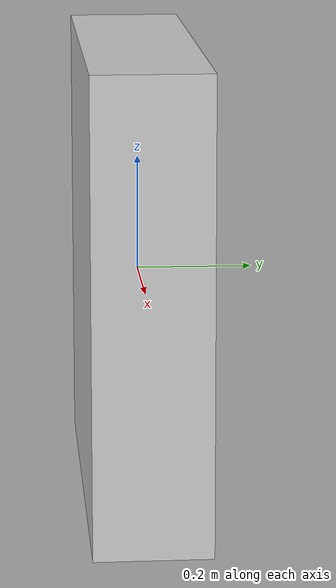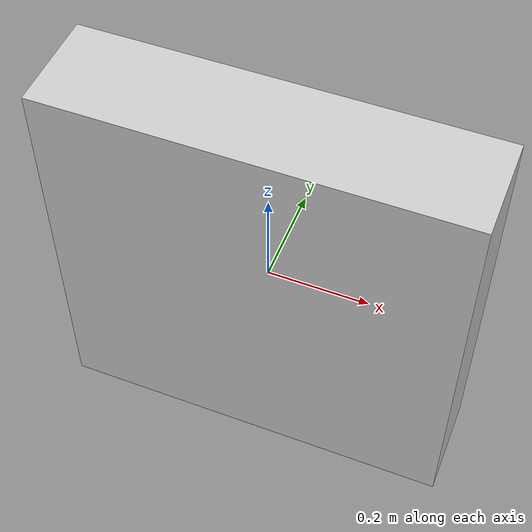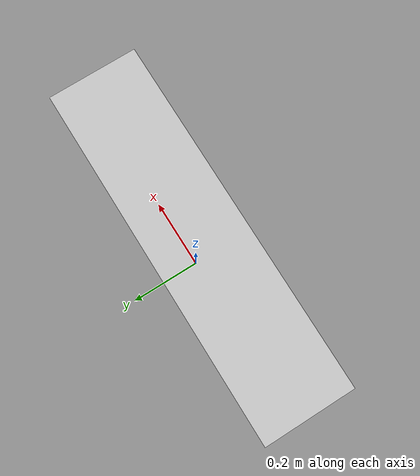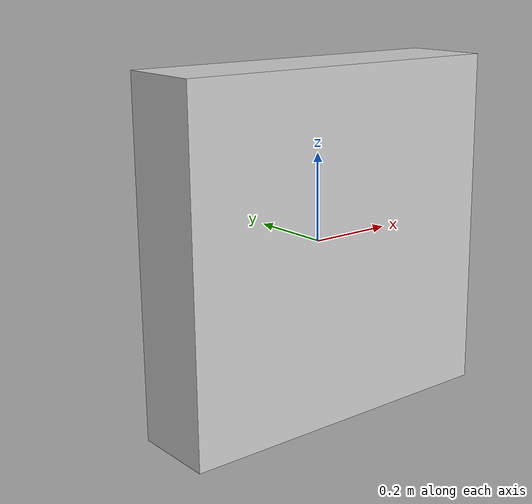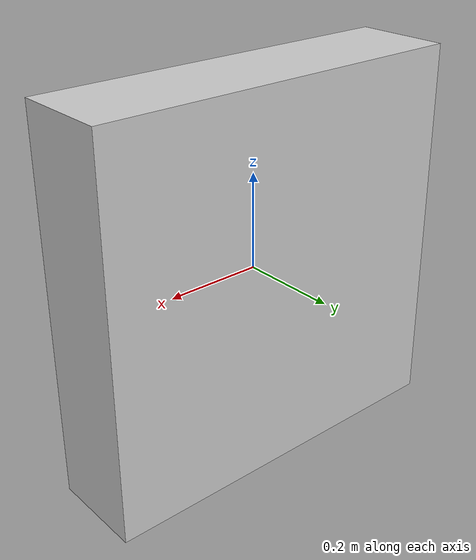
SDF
<?xml version="1.0" ?>
<sdf version="1.5">
  <model name="parede">
    <link name="link">
      <collision name="collision">
        <geometry>
          <mesh>
            <scale>0.2 0.2 0.2</scale>
            <uri>model://parede/meshes/parede.stl</uri>
          </mesh>
        </geometry>
      </collision>
      <visual name="visual">
        <geometry>
          <mesh>
            <scale>0.2 0.2 0.2</scale>
            <uri>model://parede/meshes/parede.dae</uri>
          </mesh>
        </geometry>
      </visual>
    </link>
  </model>
</sdf>
